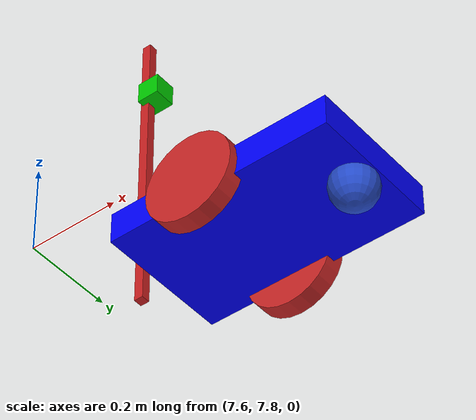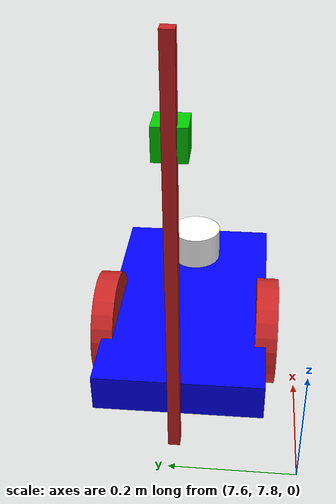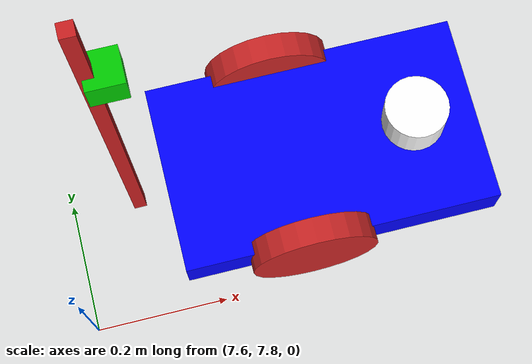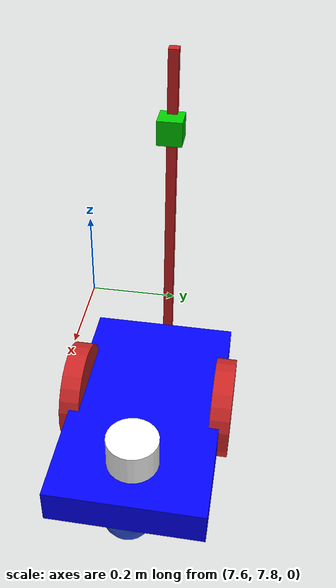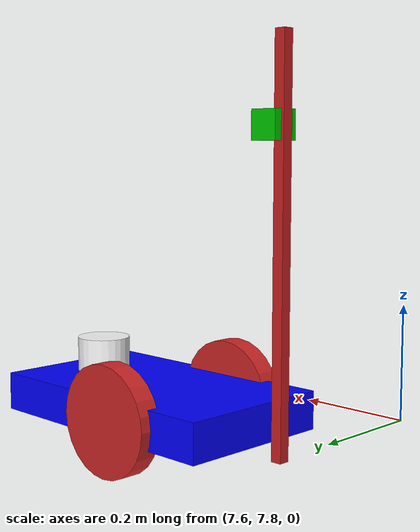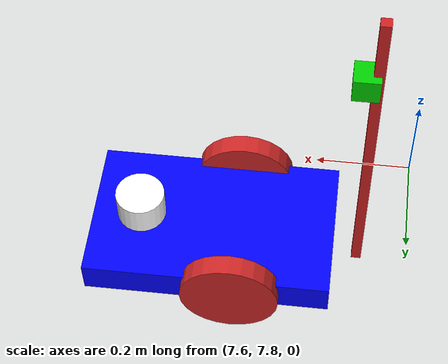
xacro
<?xml version="1.0" ?>

<robot name="follow" xmlns:xacro="https://www.ros.org/wiki/xacro" >
  <xacro:property name="cameraSize" value="0.05"/>
  <xacro:property name="cameraMass" value="0.1"/>

  <material name="black">
    <color rgba="0.0 0.0 0.0 1.0"/>
  </material>
  <material name="blue">
    <color rgba="0.0 0.0 1.0 1.0"/>
  </material>
  <material name="green">
    <color rgba="0.0 0.8 0.0 1.0"/>
  </material>
  <material name="grey">
    <color rgba="0.2 0.2 0.2 1.0"/>
  </material>
  <material name="orange">
    <color rgba="1.0 0.423529411765 0.0392156862745 1.0"/>
  </material>
  <material name="brown">
    <color rgba="0.870588235294 0.811764705882 0.764705882353 1.0"/>
  </material>
  <material name="red">
    <color rgba="0.80078125 0.12890625 0.1328125 1.0"/>
  </material>
  <material name="white">
    <color rgba="1.0 1.0 1.0 1.0"/>
  </material>

  <gazebo reference="link_chassis">
    <material>Gazebo/Blue</material>
  </gazebo>
  <gazebo reference="link_left_wheel">
    <material>Gazebo/Red</material>
  </gazebo>
  <gazebo reference="link_right_wheel">
    <material>Gazebo/Red</material>
  </gazebo>

  <link name="link_chassis">
    <!-- pose and inertial -->
    <pose>0 0 0.1 0 0 0</pose>

    <inertial>
      <mass value="5"/>
      <origin rpy="0 0 0" xyz="8 8 0.1"/>
      <inertia ixx="0.0395416666667" ixy="0" ixz="0" iyy="0.106208333333" iyz="0" izz="0.106208333333"/>
    </inertial>

    <collision name="collision_chassis">
      <geometry>
        <box size="0.5 0.3 0.07"/>
      </geometry>
    </collision>

    <visual>
      <origin rpy="0 0 0" xyz="8 8 0.0"/>
      <geometry>
        <box size="0.5 0.3 0.07"/>
      </geometry>
      <material name="blue"/>
    </visual>

    <!-- caster front -->
    <collision name="caster_front_collision">
      <origin rpy=" 0 0 0" xyz="8.35 8 -0.05"/>
      <geometry>
        <sphere radius="0.05"/>
      </geometry>
      <surface>
        <friction>
          <ode>
            <mu>0</mu>
            <mu2>0</mu2>
            <slip1>1.0</slip1>
            <slip2>1.0</slip2>
          </ode>
        </friction>
      </surface>
    </collision>
    <visual name="caster_front_visual">
      <origin rpy=" 0 0 0" xyz="8.2 8 -0.05"/>
      <geometry>
        <sphere radius="0.05"/>
      </geometry>
    </visual>
    </link>

  <!-- Create wheel right -->

  <link name="link_right_wheel">
    <inertial>
      <mass value="0.2"/>
      <origin rpy="0 1.5707 1.5707" xyz="0 0 0"/>
      <inertia ixx="0.00052666666" ixy="0" ixz="0" iyy="0.00052666666" iyz="0" izz="0.001"/>
    </inertial>

    <collision name="link_right_wheel_collision">
      <origin rpy="0 1.5707 1.5707" xyz="0 0 0" />
      <geometry>
        <cylinder length="0.04" radius="0.1"/>
      </geometry>
    </collision>

    <visual name="link_right_wheel_visual">
      <origin rpy="0 1.5707 1.5707" xyz="0 0 0"/>
      <geometry>
        <cylinder length="0.04" radius="0.1"/>
      </geometry>
    </visual>

  </link>

  <!--   Joint for right wheel  -->
  <joint name="joint_right_wheel" type="continuous">
    <origin rpy="0 0 0" xyz="7.95 8.15 0"/>
    <child link="link_right_wheel" />
    <parent link="link_chassis"/>
    <axis rpy="0 0 0" xyz="0 1 0"/>
    <limit effort="10000" velocity="1000"/>
    <joint_properties damping="1.0" friction="1.0" />
  </joint>

  <!-- Left Wheel link -->

  <link name="link_left_wheel">
    <inertial>
      <mass value="0.2"/>
      <origin rpy="0 1.5707 1.5707" xyz="0 0 0"/>
      <inertia ixx="0.00052666666" ixy="0" ixz="0" iyy="0.00052666666" iyz="0" izz="0.001"/>
    </inertial>

    <collision name="link_left_wheel_collision">
      <origin rpy="0 1.5707 1.5707" xyz="0 0 0" />
      <geometry>
        <cylinder length="0.04" radius="0.1"/>
      </geometry>
    </collision>

    <visual name="link_left_wheel_visual">
      <origin rpy="0 1.5707 1.5707" xyz="0 0 0"/>
      <geometry>
        <cylinder length="0.04" radius="0.1"/>
      </geometry>
    </visual>

  </link>

  <!--   Joint for right wheel  -->
  <joint name="joint_left_wheel" type="continuous">
    <origin rpy="0 0 0" xyz="7.95 7.85 0"/>
    <child link="link_left_wheel" />
    <parent link="link_chassis"/>
    <axis rpy="0 0 0" xyz="0 1 0"/>
    <limit effort="10000" velocity="1000"/>
    <joint_properties damping="1.0" friction="1.0" />
  </joint>

<!--Stick-->

<link name="stick">
    <!-- pose and inertial -->
    <pose>0 0 0.1 0 0 0</pose>

    <inertial>
      <mass value="0.1"/>
      <origin rpy="0 0 0" xyz="0 0 0.1"/>
      <inertia ixx="0.00395416666667" ixy="0" ixz="0" iyy="0.0106208333333" iyz="0" izz="0.0106208333333"/>
    </inertial>

    <collision name="collision_chassis">
      <geometry>
        <box size="0.02 0.02 0.7"/>
      </geometry>
    </collision>

    <visual>
      <origin rpy="0 0 0" xyz="0 0 0"/>
      <geometry>
        <box size="0.02 0.02 0.7"/>
      </geometry>
      <material name="red"/>
    </visual>
</link>

 <!--   Joint for stick  -->
  <joint name="joint_stick" type="fixed">
    <origin rpy="0 0 0" xyz="7.7 8 0.30"/>
    <child link="stick" />
    <parent link="link_chassis"/>
  </joint>

     <gazebo>
    <plugin filename="libgazebo_ros_diff_drive.so" name="differential_drive_controller">
      <alwaysOn>true</alwaysOn>
      <updateRate>5</updateRate>
      <leftJoint>joint_left_wheel</leftJoint>
      <rightJoint>joint_right_wheel</rightJoint>
      <wheelSeparation>0.4</wheelSeparation>
      <wheelDiameter>0.2</wheelDiameter>
      <torque>0.1</torque>
      <commandTopic>cmd_vel</commandTopic>
      <odometryTopic>odom</odometryTopic>
      <odometryFrame>odom</odometryFrame>
      <robotBaseFrame>link_chassis</robotBaseFrame>
    </plugin>
  </gazebo>

 <link name="sensor_laser">
    <inertial>
      <origin xyz="0 0 0" rpy="0 0 0" />
      <mass value="1" />
      <!-- RANDOM INERTIA BELOW -->
      <inertia ixx="0.02" ixy="0" ixz="0" iyy="0.02" iyz="0" izz="0.02"/>
    </inertial>

    <visual>
      <origin xyz="0 0 0" rpy="0 0 0" />
      <geometry>
        <cylinder radius="0.05" length="0.1"/>
      </geometry>
      <material name="white" />
    </visual>

    <collision>
      <origin xyz="0 0 0" rpy="0 0 0"/>
      <geometry>
        <cylinder radius="0.05" length="0.1"/>
      </geometry>
    </collision>
  </link>

  <joint name="joint_sensor_laser" type="fixed">
    <origin xyz="8.15 8 0.05" rpy="0 0 0"/>
    <parent link="link_chassis"/>
    <child link="sensor_laser"/>
  </joint>

<xacro:macro name="cylinder_inertia" params="mass r l">
    <inertia ixx="${mass*(3*r*r+l*l)/12}" ixy = "0" ixz = "0"
                iyy="${mass*(3*r*r+l*l)/12}" iyz = "0" izz="${mass*(r*r)/2}" />
</xacro:macro>

<xacro:cylinder_inertia mass="1" r="0.05" l="0.1" />

<gazebo reference="sensor_laser">
    <sensor type="ray" name="head_hokuyo_sensor">
      <pose>0 0 0 0 0 0</pose>
      <visualize>false</visualize>
      <update_rate>20</update_rate>
      <ray>
        <scan>
          <horizontal>
            <samples>720</samples>
            <resolution>1</resolution>
            <min_angle>-1.570796</min_angle>
            <max_angle>1.570796</max_angle>
          </horizontal>
        </scan>
        <range>
          <min>0.10</min>
          <max>10.0</max>
          <resolution>0.01</resolution>
        </range>
        <noise>
          <type>gaussian</type>
          <mean>0.0</mean>
          <stddev>0.01</stddev>
        </noise>
      </ray>
      <plugin name="gazebo_ros_head_hokuyo_controller" filename="libgazebo_ros_laser.so">
        <topicName>/m2wr/laser/scan</topicName>
        <frameName>sensor_laser</frameName>
      </plugin>
    </sensor>
  </gazebo>

  <link name="camera">
    <collision>
      <origin xyz="0 0 0" rpy="0 0 0"/>
      <geometry>
        <box size="${cameraSize} ${cameraSize} ${cameraSize}"/>
      </geometry>
    </collision>

    <visual>
      <origin xyz="0 0 0" rpy="0 0 0"/>
      <geometry>
        <box size="${cameraSize} ${cameraSize} ${cameraSize}"/>
      </geometry>
      <material name="green"/>
    </visual>

    <inertial>
      <mass value="${cameraMass}" />
      <origin xyz="0 0 0" rpy="0 0 0"/>
      <box_inertia m="${cameraMass}" x="${cameraSize}" y="${cameraSize}" z="${cameraSize}" />
      <inertia ixx="1e-6" ixy="0" ixz="0" iyy="1e-6" iyz="0" izz="1e-6" />
    </inertial>
  </link>

  <joint name="camera_joint" type="fixed">
    <axis xyz="0.1 0 0.15" />
    <origin xyz="7.72 8 0.5" rpy="0 0.0 0"/>
    <parent link="link_chassis"/>
    <child link="camera"/>
  </joint>

  <!-- camera -->
  <gazebo reference="camera">
    <sensor type="camera" name="camera1">
      <update_rate>30.0</update_rate>
      <camera name="head">
        <horizontal_fov>1.39</horizontal_fov>
        <image>
          <width>400</width>
          <height>400</height>
          <format>R8G8B8</format>
        </image>
        <clip>
          <near>0.02</near>
          <far>300</far>
        </clip>
        <noise>
          <type>gaussian</type>
          <!-- Noise is sampled independently per pixel on each frame.
               That pixel's noise value is added to each of its color
               channels, which at that point lie in the range [0,1]. -->
          <mean>0.0</mean>
          <stddev>0.007</stddev>
        </noise>
      </camera>
      <plugin name="camera_controller" filename="libgazebo_ros_camera.so">
        <alwaysOn>true</alwaysOn>
        <updateRate>0.0</updateRate>
        <cameraName>mybot/camera1</cameraName>
        <imageTopicName>image_raw</imageTopicName>
        <cameraInfoTopicName>camera_info</cameraInfoTopicName>
        <frameName>camera_link</frameName>
        <hackBaseline>0.07</hackBaseline>
        <distortionK1>0.0</distortionK1>
        <distortionK2>0.0</distortionK2>
        <distortionK3>0.0</distortionK3>
        <distortionT1>0.0</distortionT1>
        <distortionT2>0.0</distortionT2>
      </plugin>
    </sensor>
  </gazebo>

</robot>
